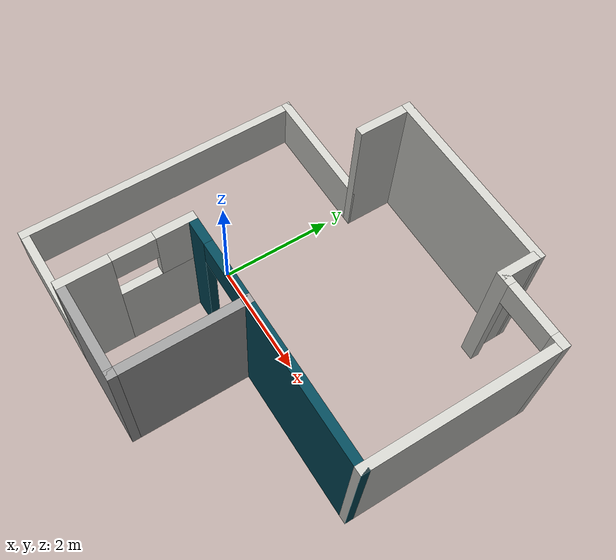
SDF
<?xml version='1.0'?>
<sdf version='1.6'>
  <model name='Estudio'>
    <pose frame=''>1.26202 0.284948 0 0 -0 0</pose>
    <link name='Wall_10'>
      <collision name='Wall_10_Collision'>
        <geometry>
          <box>
            <size>0.755589 0.15 2.5</size>
          </box>
        </geometry>
        <pose frame=''>0 0 1.25 0 -0 0</pose>
      </collision>
      <visual name='Wall_10_Visual'>
        <pose frame=''>0 0 1.25 0 -0 0</pose>
        <geometry>
          <box>
            <size>0.755589 0.15 2.5</size>
          </box>
        </geometry>
        <material>
          <script>
            <uri>file://media/materials/scripts/gazebo.material</uri>
            <name>Gazebo/CeilingTiled</name>
          </script>
          <ambient>1 1 1 1</ambient>
        </material>
        <meta>
          <layer>0</layer>
        </meta>
      </visual>
      <pose frame=''>1.975 2.67195 0 0 -0 1.57073</pose>
    </link>
    <link name='Wall_11'>
      <collision name='Wall_11_Collision'>
        <geometry>
          <box>
            <size>3.25 0.15 2.5</size>
          </box>
        </geometry>
        <pose frame=''>0 0 1.25 0 -0 0</pose>
      </collision>
      <visual name='Wall_11_Visual'>
        <pose frame=''>0 0 1.25 0 -0 0</pose>
        <geometry>
          <box>
            <size>3.25 0.15 2.5</size>
          </box>
        </geometry>
        <material>
          <script>
            <uri>file://media/materials/scripts/gazebo.material</uri>
            <name>Gazebo/CeilingTiled</name>
          </script>
          <ambient>1 1 1 1</ambient>
        </material>
        <meta>
          <layer>0</layer>
        </meta>
      </visual>
      <pose frame=''>0.425019 2.97484 0 0 -0 3.14159</pose>
    </link>
    <link name='Wall_12'>
      <collision name='Wall_12_Collision'>
        <geometry>
          <box>
            <size>1 0.15 2.5</size>
          </box>
        </geometry>
        <pose frame=''>0 0 1.25 0 -0 0</pose>
      </collision>
      <visual name='Wall_12_Visual'>
        <pose frame=''>0 0 1.25 0 -0 0</pose>
        <geometry>
          <box>
            <size>1 0.15 2.5</size>
          </box>
        </geometry>
        <material>
          <script>
            <uri>file://media/materials/scripts/gazebo.material</uri>
            <name>Gazebo/CeilingTiled</name>
          </script>
          <ambient>1 1 1 1</ambient>
        </material>
        <meta>
          <layer>0</layer>
        </meta>
      </visual>
      <pose frame=''>-1.125 2.54995 0 0 0 -1.57084</pose>
    </link>
    <link name='Wall_13'>
      <collision name='Wall_13_Collision'>
        <geometry>
          <box>
            <size>2.25 0.15 0.9</size>
          </box>
        </geometry>
        <pose frame=''>0 0 0.45 0 -0 0</pose>
      </collision>
      <visual name='Wall_13_Visual'>
        <pose frame=''>0 0 0.45 0 -0 0</pose>
        <geometry>
          <box>
            <size>2.25 0.15 0.9</size>
          </box>
        </geometry>
        <material>
          <script>
            <uri>file://media/materials/scripts/gazebo.material</uri>
            <name>Gazebo/CeilingTiled</name>
          </script>
          <ambient>1 1 1 1</ambient>
        </material>
        <meta>
          <layer>0</layer>
        </meta>
      </visual>
      <pose frame=''>-2.17502 2.12505 0 0 -0 3.14159</pose>
    </link>
    <link name='Wall_14'>
      <collision name='Wall_14_Collision'>
        <geometry>
          <box>
            <size>5.25 0.15 0.9</size>
          </box>
        </geometry>
        <pose frame=''>0 0 0.45 0 -0 0</pose>
      </collision>
      <visual name='Wall_14_Visual'>
        <pose frame=''>0 0 0.45 0 -0 0</pose>
        <geometry>
          <box>
            <size>5.25 0.15 0.9</size>
          </box>
        </geometry>
        <material>
          <script>
            <uri>file://media/materials/scripts/gazebo.material</uri>
            <name>Gazebo/CeilingTiled</name>
          </script>
          <ambient>1 1 1 1</ambient>
        </material>
        <meta>
          <layer>0</layer>
        </meta>
      </visual>
      <pose frame=''>-3.22502 -0.424948 0 0 0 -1.5708</pose>
    </link>
    <link name='Wall_15'>
      <collision name='Wall_15_Collision'>
        <geometry>
          <box>
            <size>2.25 0.15 0.9</size>
          </box>
        </geometry>
        <pose frame=''>0 0 0.45 0 -0 0</pose>
      </collision>
      <visual name='Wall_15_Visual'>
        <pose frame=''>0 0 0.45 0 -0 0</pose>
        <geometry>
          <box>
            <size>2.25 0.15 0.9</size>
          </box>
        </geometry>
        <material>
          <script>
            <uri>file://media/materials/scripts/gazebo.material</uri>
            <name>Gazebo/CeilingTiled</name>
          </script>
          <ambient>1 1 1 1</ambient>
        </material>
        <meta>
          <layer>0</layer>
        </meta>
      </visual>
      <pose frame=''>-2.17502 -2.97495 0 0 -0 0</pose>
    </link>
    <link name='Wall_16'>
      <pose frame=''>-1.12502 -1.92495 0 0 -0 1.5708</pose>
      <visual name='Wall_16_Visual_0'>
        <pose frame=''>-0.691612 0 1.25 0 -0 0</pose>
        <geometry>
          <box>
            <size>0.866775 0.15 2.5</size>
          </box>
        </geometry>
        <material>
          <script>
            <uri>file://media/materials/scripts/gazebo.material</uri>
            <name>Gazebo/CeilingTiled</name>
          </script>
          <ambient>1 1 1 1</ambient>
        </material>
        <meta>
          <layer>0</layer>
        </meta>
      </visual>
      <collision name='Wall_16_Collision_0'>
        <geometry>
          <box>
            <size>0.866775 0.15 2.5</size>
          </box>
        </geometry>
        <pose frame=''>-0.691612 0 1.25 0 -0 0</pose>
      </collision>
      <visual name='Wall_16_Visual_1'>
        <pose frame=''>0.433388 0 0.75 0 -0 0</pose>
        <geometry>
          <box>
            <size>1.38322 0.15 1.5</size>
          </box>
        </geometry>
        <material>
          <script>
            <uri>file://media/materials/scripts/gazebo.material</uri>
            <name>Gazebo/CeilingTiled</name>
          </script>
          <ambient>1 1 1 1</ambient>
        </material>
        <meta>
          <layer>0</layer>
        </meta>
      </visual>
      <collision name='Wall_16_Collision_1'>
        <geometry>
          <box>
            <size>1.38322 0.15 1.5</size>
          </box>
        </geometry>
        <pose frame=''>0.433388 0 0.75 0 -0 0</pose>
      </collision>
      <visual name='Wall_16_Visual_2'>
        <pose frame=''>0.783388 0 2 0 -0 0</pose>
        <geometry>
          <box>
            <size>0.683225 0.15 1</size>
          </box>
        </geometry>
        <material>
          <script>
            <uri>file://media/materials/scripts/gazebo.material</uri>
            <name>Gazebo/CeilingTiled</name>
          </script>
          <ambient>1 1 1 1</ambient>
        </material>
        <meta>
          <layer>0</layer>
        </meta>
      </visual>
      <collision name='Wall_16_Collision_2'>
        <geometry>
          <box>
            <size>0.683225 0.15 1</size>
          </box>
        </geometry>
        <pose frame=''>0.783388 0 2 0 -0 0</pose>
      </collision>
      <visual name='Wall_16_Visual_3'>
        <pose frame=''>0.091775 0 2.25 0 -0 0</pose>
        <geometry>
          <box>
            <size>0.7 0.15 0.5</size>
          </box>
        </geometry>
        <material>
          <script>
            <uri>file://media/materials/scripts/gazebo.material</uri>
            <name>Gazebo/CeilingTiled</name>
          </script>
          <ambient>1 1 1 1</ambient>
        </material>
        <meta>
          <layer>0</layer>
        </meta>
      </visual>
      <collision name='Wall_16_Collision_3'>
        <geometry>
          <box>
            <size>0.7 0.15 0.5</size>
          </box>
        </geometry>
        <pose frame=''>0.091775 0 2.25 0 -0 0</pose>
      </collision>
    </link>
    <link name='Wall_34'>
      <pose frame=''>2.59998 2.36905 0 0 -0 0</pose>
      <visual name='Wall_34_Visual_0'>
        <pose frame=''>-0.572677 0 1.25 0 -0 0</pose>
        <geometry>
          <box>
            <size>0.254646 0.15 2.5</size>
          </box>
        </geometry>
        <material>
          <script>
            <uri>file://media/materials/scripts/gazebo.material</uri>
            <name>Gazebo/CeilingTiled</name>
          </script>
          <ambient>1 1 1 1</ambient>
        </material>
        <meta>
          <layer>0</layer>
        </meta>
      </visual>
      <collision name='Wall_34_Collision_0'>
        <geometry>
          <box>
            <size>0.254646 0.15 2.5</size>
          </box>
        </geometry>
        <pose frame=''>-0.572677 0 1.25 0 -0 0</pose>
      </collision>
      <visual name='Wall_34_Visual_1'>
        <pose frame=''>0.577323 0 1.25 0 -0 0</pose>
        <geometry>
          <box>
            <size>0.245354 0.15 2.5</size>
          </box>
        </geometry>
        <material>
          <script>
            <uri>file://media/materials/scripts/gazebo.material</uri>
            <name>Gazebo/CeilingTiled</name>
          </script>
          <ambient>1 1 1 1</ambient>
        </material>
        <meta>
          <layer>0</layer>
        </meta>
      </visual>
      <collision name='Wall_34_Collision_1'>
        <geometry>
          <box>
            <size>0.245354 0.15 2.5</size>
          </box>
        </geometry>
        <pose frame=''>0.577323 0 1.25 0 -0 0</pose>
      </collision>
      <visual name='Wall_34_Visual_2'>
        <pose frame=''>0.004646 0 2.25 0 -0 0</pose>
        <geometry>
          <box>
            <size>0.9 0.15 0.5</size>
          </box>
        </geometry>
        <material>
          <script>
            <uri>file://media/materials/scripts/gazebo.material</uri>
            <name>Gazebo/CeilingTiled</name>
          </script>
          <ambient>1 1 1 1</ambient>
        </material>
        <meta>
          <layer>0</layer>
        </meta>
      </visual>
      <collision name='Wall_34_Collision_2'>
        <geometry>
          <box>
            <size>0.9 0.15 0.5</size>
          </box>
        </geometry>
        <pose frame=''>0.004646 0 2.25 0 -0 0</pose>
      </collision>
    </link>
    <link name='Wall_39'>
      <pose frame=''>1.04998 -0.874948 0 0 -0 0</pose>
      <visual name='Wall_39_Visual_0'>
        <pose frame=''>-1.96241 0 1.25 0 -0 0</pose>
        <geometry>
          <box>
            <size>0.575182 0.15 2.5</size>
          </box>
        </geometry>
        <material>
          <script>
            <uri>file://media/materials/scripts/gazebo.material</uri>
            <name>Gazebo/Grey</name>
          </script>
          <ambient>0.0117647 0.282353 0.345098 1</ambient>
        </material>
        <meta>
          <layer>0</layer>
        </meta>
      </visual>
      <collision name='Wall_39_Collision_0'>
        <geometry>
          <box>
            <size>0.575182 0.15 2.5</size>
          </box>
        </geometry>
        <pose frame=''>-1.96241 0 1.25 0 -0 0</pose>
      </collision>
      <visual name='Wall_39_Visual_1'>
        <pose frame=''>0.798266 0 1.25 0 -0 0</pose>
        <geometry>
          <box>
            <size>2.90347 0.15 2.5</size>
          </box>
        </geometry>
        <material>
          <script>
            <uri>file://media/materials/scripts/gazebo.material</uri>
            <name>Gazebo/Grey</name>
          </script>
          <ambient>0.0117647 0.282353 0.345098 1</ambient>
        </material>
        <meta>
          <layer>0</layer>
        </meta>
      </visual>
      <collision name='Wall_39_Collision_1'>
        <geometry>
          <box>
            <size>2.90347 0.15 2.5</size>
          </box>
        </geometry>
        <pose frame=''>0.798266 0 1.25 0 -0 0</pose>
      </collision>
      <visual name='Wall_39_Visual_2'>
        <pose frame=''>-1.16414 0 2.25 0 -0 0</pose>
        <geometry>
          <box>
            <size>1.02135 0.15 0.5</size>
          </box>
        </geometry>
        <material>
          <script>
            <uri>file://media/materials/scripts/gazebo.material</uri>
            <name>Gazebo/Grey</name>
          </script>
          <ambient>0.0117647 0.282353 0.345098 1</ambient>
        </material>
        <meta>
          <layer>0</layer>
        </meta>
      </visual>
      <collision name='Wall_39_Collision_2'>
        <geometry>
          <box>
            <size>1.02135 0.15 0.5</size>
          </box>
        </geometry>
        <pose frame=''>-1.16414 0 2.25 0 -0 0</pose>
      </collision>
    </link>
    <link name='Wall_42'>
      <collision name='Wall_42_Collision'>
        <geometry>
          <box>
            <size>3.25 0.15 2.5</size>
          </box>
        </geometry>
        <pose frame=''>0 0 1.25 0 -0 0</pose>
      </collision>
      <visual name='Wall_42_Visual'>
        <pose frame=''>0 0 1.25 0 -0 0</pose>
        <geometry>
          <box>
            <size>3.25 0.15 2.5</size>
          </box>
        </geometry>
        <material>
          <script>
            <uri>file://media/materials/scripts/gazebo.material</uri>
            <name>Gazebo/CeilingTiled</name>
          </script>
          <ambient>1 1 1 1</ambient>
        </material>
        <meta>
          <layer>0</layer>
        </meta>
      </visual>
      <pose frame=''>3.225 0.674945 0 0 -0 1.57078</pose>
    </link>
    <link name='Wall_44'>
      <collision name='Wall_44_Collision'>
        <geometry>
          <box>
            <size>2.25 0.15 2.5</size>
          </box>
        </geometry>
        <pose frame=''>0 0 1.25 0 -0 0</pose>
      </collision>
      <visual name='Wall_44_Visual'>
        <pose frame=''>0 0 1.25 0 -0 0</pose>
        <geometry>
          <box>
            <size>2.25 0.15 2.5</size>
          </box>
        </geometry>
        <material>
          <script>
            <uri>file://media/materials/scripts/gazebo.material</uri>
            <name>Gazebo/Grey</name>
          </script>
          <ambient>1 1 1 1</ambient>
        </material>
        <meta>
          <layer>0</layer>
        </meta>
      </visual>
      <pose frame=''>0.450981 -1.92495 0 0 0 -1.5708</pose>
    </link>
    <link name='Wall_45'>
      <collision name='Wall_45_Collision'>
        <geometry>
          <box>
            <size>1.726 0.15 2.5</size>
          </box>
        </geometry>
        <pose frame=''>0 0 1.25 0 -0 0</pose>
      </collision>
      <visual name='Wall_45_Visual'>
        <pose frame=''>0 0 1.25 0 -0 0</pose>
        <geometry>
          <box>
            <size>1.726 0.15 2.5</size>
          </box>
        </geometry>
        <material>
          <script>
            <uri>file://media/materials/scripts/gazebo.material</uri>
            <name>Gazebo/Grey</name>
          </script>
          <ambient>1 1 1 1</ambient>
        </material>
        <meta>
          <layer>0</layer>
        </meta>
      </visual>
      <pose frame=''>-0.33702 -2.97495 0 0 -0 3.14159</pose>
    </link>
    <static>1</static>
  </model>
</sdf>
